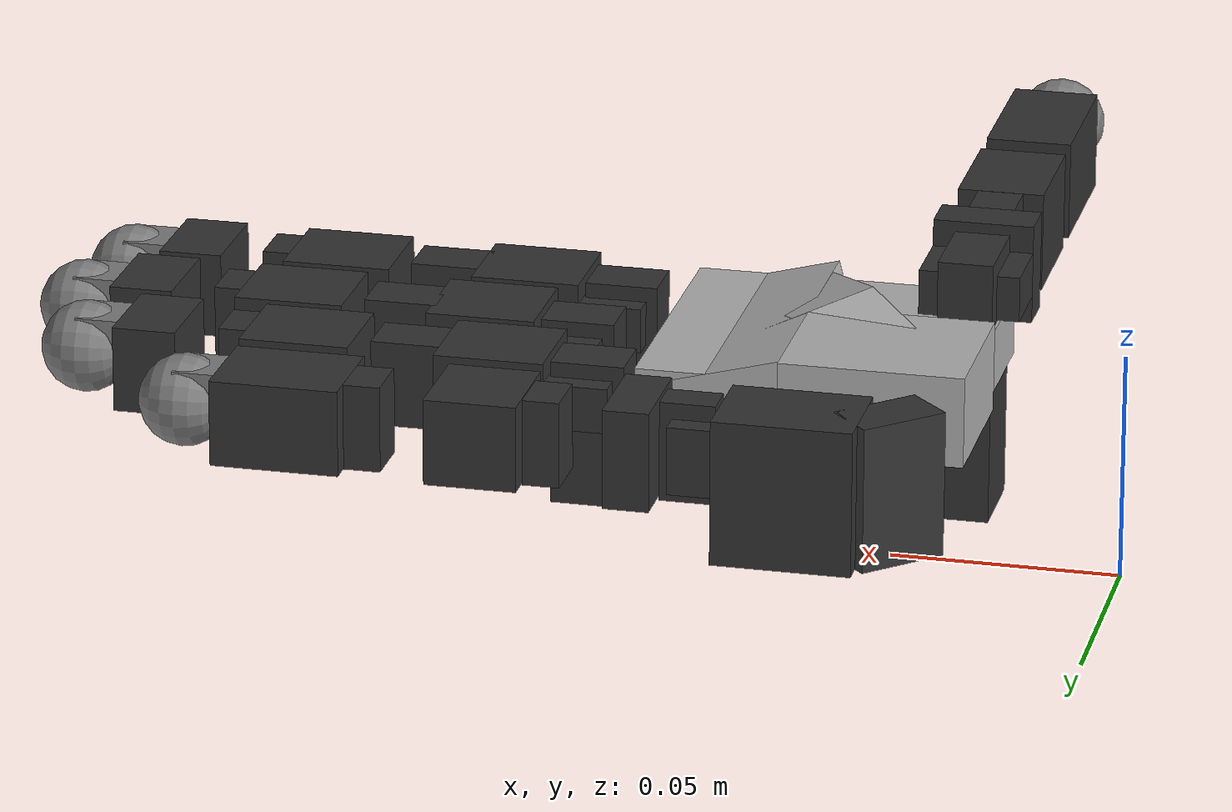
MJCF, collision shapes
<mujoco model="dg5f_right">
  <compiler angle="radian" meshdir="meshes/tesollo"/>

  <option timestep="0.01" integrator="Euler" iterations="5" ls_iterations="8">
    <flag eulerdamp="disable" multiccd="disable" nativeccd="disable"/>
  </option>

  <custom>
    <numeric data="200" name="max_contact_points"/>
    <numeric  data="128" name="contact_sensor_maxmatch"/>

  </custom>

  <default>
    <joint axis="0 1 0" damping="0.2" armature="0.00149376" actuatorfrcrange="-0.2196 0.2196" frictionloss="0.02"/>

    <default class="visual">
      <geom type="mesh" contype="0" conaffinity="0" group="2"/>
    </default>

    <default class="collision">
      <geom group="3" friction="0.2" solref="0.02 1.5" solimp="0.95 0.99 0.001" type="box" mass="0" material="black"/>
      <default class="palm">
        <geom condim="3" friction="2 0.5 0.001" rgba=".7 .7 .7 .3"/>
      </default>
      <default class="tip">
        <geom margin="0.001" condim="4" friction="1 0.1 0.0002" rgba=".5 .5 .5 .3" solimp="0.99 0.999 0.0001"/>
      </default>
    </default>
  </default>

  <asset>
    <material name="black" rgba="0.2 0.2 0.2 1"/>
    <material name="white" rgba="0.9 0.9 0.9 1"/>

    <texture type="skybox" builtin="gradient" rgb1="0.3 0.5 0.7" rgb2="0 0 0" width="512" height="3072"/>

    <mesh name="rl_dg_mount_c" content_type="model/stl" file="rl_dg_mount_c_simple.STL"/>
    <mesh name="rl_dg_base_c" content_type="model/stl" file="rl_dg_base_c_simple.STL"/>
    <mesh name="rl_dg_palm_c" content_type="model/stl" file="rl_dg_palm_c.STL"/>

    <mesh name="rl_dg_1_1_c" content_type="model/stl" file="rl_dg_1_1_c.STL"/>
    <mesh name="rl_dg_1_2_c" content_type="model/stl" file="rl_dg_1_2_c.STL"/>
    <mesh name="rl_dg_1_3_c" content_type="model/stl" file="rl_dg_1_3_c.STL"/>
    <mesh name="rl_dg_1_4_c" content_type="model/stl" file="rl_dg_1_4_c.STL"/>
    <mesh name="rl_dg_1_tip_c" content_type="model/stl" file="rl_dg_1_tip_c_simple.STL"/>

    <mesh name="rl_dg_2_1_c" content_type="model/stl" file="rl_dg_2_1_c.STL"/>
    <mesh name="rl_dg_2_2_c" content_type="model/stl" file="rl_dg_2_2_c.STL"/>
    <mesh name="rl_dg_2_3_c" content_type="model/stl" file="rl_dg_2_3_c.STL"/>
    <mesh name="rl_dg_2_4_c" content_type="model/stl" file="rl_dg_2_4_c.STL"/>
    <mesh name="rl_dg_2_tip_c" content_type="model/stl" file="rl_dg_2_tip_c_simple.STL"/>

    <mesh name="rl_dg_3_1_c" content_type="model/stl" file="rl_dg_3_1_c.STL"/>
    <mesh name="rl_dg_3_2_c" content_type="model/stl" file="rl_dg_3_2_c.STL"/>
    <mesh name="rl_dg_3_3_c" content_type="model/stl" file="rl_dg_3_3_c.STL"/>
    <mesh name="rl_dg_3_4_c" content_type="model/stl" file="rl_dg_3_4_c.STL"/>
    <mesh name="rl_dg_3_tip_c" content_type="model/stl" file="rl_dg_2_tip_c_simple.STL"/>

    <mesh name="rl_dg_4_1_c" content_type="model/stl" file="rl_dg_4_1_c.STL"/>
    <mesh name="rl_dg_4_2_c" content_type="model/stl" file="rl_dg_4_2_c.STL"/>
    <mesh name="rl_dg_4_3_c" content_type="model/stl" file="rl_dg_4_3_c.STL"/>
    <mesh name="rl_dg_4_4_c" content_type="model/stl" file="rl_dg_4_4_c.STL"/>
    <mesh name="rl_dg_4_tip_c" content_type="model/stl" file="rl_dg_2_tip_c_simple.STL"/>

    <mesh name="rl_dg_5_1_c" content_type="model/stl" file="rl_dg_5_1_c.STL"/>
    <mesh name="rl_dg_5_2_c" content_type="model/stl" file="rl_dg_5_2_c.STL"/>
    <mesh name="rl_dg_5_3_c" content_type="model/stl" file="rl_dg_5_3_c.STL"/>
    <mesh name="rl_dg_5_4_c" content_type="model/stl" file="rl_dg_5_4_c.STL"/>
    <mesh name="rl_dg_5_tip_c" content_type="model/stl" file="rl_dg_2_tip_c_simple.STL"/>
  </asset>

  <worldbody>
    <light name="spotlight" mode="targetbodycom" target="palm_lower" pos="3 0 4"/>

    <body name="rh" quat="0 1 0 1" pos="-0.05 0 0.03">
    <joint name="rj_wrist_1_1" pos="0 0 0" axis="1 0 0" range="-0.3 0.3" actuatorfrcrange="-10 10" damping="0.1" armature="0.149376" frictionloss="0.2"/>
    <joint name="rj_wrist_1_2" pos="0 0 0" axis="0 1 0" range="-0.3 0.3" actuatorfrcrange="-10 10" damping="0.1" armature="0.149376" frictionloss="0.2"/>
    <joint name="rj_wrist_1_3" pos="0 0 0" axis="0 0 1" range="-0.3 0.3" actuatorfrcrange="-10 10" damping="0.1" armature="0.149376" frictionloss="0.2"/>

    <body name="mount">
      <inertial pos="0 0 0" quat="0.414969 0.572521 0.572945 0.414433" mass="0.045" diaginertia="1.3718e-05 1.31155e-05 3.31624e-06"/>
      <site name="wrist_site" pos="0.0 0.0 0.0" group="4"/>

      <site name="grasp_site" pos="0.01 0.017 0.02" group="4"/>

      <geom class="visual" type="mesh" mesh="rl_dg_mount_c"/>
      <geom class="visual" pos="0 0 0.004" type="mesh" mesh="rl_dg_base_c"/>
      <geom class="visual" pos="0 0 0.0738" quat="1 0 0 0" type="mesh" mesh="rl_dg_palm_c"/>
      <geom class="palm" size="0.007 0.032 0.015" pos="0.013 0.0015 0.135"/>

      <geom class="palm" size="0.01 0.014 0.01" pos="0.0135 0.015 0.12" quat="1 0.34 -0.135 0.05"/>

      <geom class="palm" size="0.01 0.018 0.014" pos="0.01195 -0.00923 0.10547" quat="0.99349 0.35827 -0.07395 -0.12441"/>
      <geom class="palm" size="0.0097 0.032 0.014" pos="0.01125 0.0015 0.13" quat="1 0 -0.13 0"/>
      <geom class="palm" size="0.01 0.0175 0.02" pos="0.01425 -0.014 0.099" quat="1 0 0 0"/>

      <body name="palm_lower" pos="0.00 0 0">
        <geom class="palm" size="0.007 0.032 0.02" pos="0.013 0.0015 0.1"/>
      </body>
    </body>

    <!-- Thumb -->
    <body name="rl_dg_1_1" pos="-0.0162 0.019 0.0866">
      <inertial pos="0.021473 3.1163e-06 0.0028146" quat="0.414969 0.572521 0.572945 0.414433" mass="0.045" diaginertia="1.3718e-05 1.31155e-05 3.31624e-06"/>
      <joint name="rj_dg_1_1" pos="0 0 0" axis="1 0 0" range="-0.383972 0.890118"/>
      <geom type="mesh" class="visual" mesh="rl_dg_1_1_c"/>
      <geom class="collision" size="0.0295 0.01 0.006" pos="0.021473 3.1163e-06 -0.00"/>

      <body name="rl_dg_1_2" pos="0.04195 0 0">
        <inertial pos="0.00055633 0.0155 0.00055633" quat="0.379972 0.152995 -0.59634 0.690357" mass="0.025" diaginertia="2.07162e-06 1.99661e-06 1.37777e-06"/>
        <joint name="rj_dg_1_2" pos="0 0 0" axis="0 0 1" range="-3.14159 0" />
        <geom type="mesh" class="visual" mesh="rl_dg_1_2_c"/>
        <geom class="collision" size="0.005 0.01 0.011" pos="0.00 0.005 -0.00"/>
        <geom class="collision" size="0.011 0.005 0.011" pos="0.00 0.016 -0.00"/>
        <geom class="collision" size="0.011 0.01 0.005" pos="0.00 0.023 -0.00"/>

        <body name="rl_dg_1_3" pos="0 0.031 0">
          <inertial pos="2.3008e-05 0.014842 4.7446e-06" quat="0.523748 0.473568 -0.525398 0.474739" mass="0.045" diaginertia="6.4181e-06 6.01585e-06 2.42154e-06"/>
          <joint name="rj_dg_1_3" pos="0 0 0" axis="1 0 0" range="0 1.5708" />
          <geom type="mesh" class="visual" mesh="rl_dg_1_3_c"/>
          <geom class="collision" size="0.011 0.014 0.0095" pos="2.3008e-05 0.014842 4.7446e-06"/>

          <body name="rl_dg_1_4" pos="0 0.0388 0">
            <inertial pos="-0.000182282 0.0140657 0.000732812" quat="0.521074 0.440882 -0.475371 0.555092" mass="0.05" diaginertia="2.0651e-05 2.02971e-05 3.29812e-06"/>
            <joint name="rj_dg_1_4" pos="0 0 0" axis="1 0 0" range="0 1.5708" />
            <geom type="mesh" class="visual" mesh="rl_dg_1_4_c"/>
            <geom class="collision" size="0.011 0.018 0.0095" pos="2.3008e-05 0.014842 4.7446e-06"/>

            <geom class="visual" pos="0 0.0363 0" quat="1 0 0 0" type="mesh" mesh="rl_dg_1_tip_c" material="white"/>
            <site name="rl_dg_1_tip_c" pos="0 -0.0 0.0" group="4"/>

            <geom name="rl_dg_1_tip" class="tip" type="sphere" size="0.01" pos="0.00 0.044 0.0007"/>
            <geom name="rl_dg_1_tip_2" class="tip" size="0.006 0.009 0.004" pos="0.00 0.0363 0.005"/>

          </body>
        </body>
      </body>
    </body>

    <!-- Pointer -->
    <body name="rl_dg_2_1" pos="-0.0071 0.027 0.1399">
      <inertial pos="0.001061 0.00024417 0.023499" quat="0.632598 0.317074 0.297256 0.641032" mass="0.045" diaginertia="9.53287e-06 8.0012e-06 5.63792e-06"/>
      <joint name="rj_dg_2_1" pos="0 0 0" axis="1 0 0" range="-0.418879 0.610865" />
      <geom type="mesh" class="visual" mesh="rl_dg_2_1_c"/>
      <geom class="collision" size="0.016 0.006 0.008" pos="0.01 0.0 0.025"/>

      <body name="rl_dg_2_2" pos="0.01765 0 0.0265">
        <inertial pos="-4.7446e-06 2.3008e-05 0.023958" quat="0.998727 0.0504191 0.000239574 0.00141058" mass="0.045" diaginertia="6.4181e-06 6.01585e-06 2.42154e-06"/>
        <joint name="rj_dg_2_2" pos="0 0 0" axis="0 1 0" range="0 2.00713" />
        <geom type="mesh" class="visual" mesh="rl_dg_2_2_c"/>
        <geom class="collision" size="0.005 0.011 0.012" pos="2.3008e-05 0.0 0.005"/>
        <geom class="collision" size="0.0095 0.011 0.012" pos="2.3008e-05 0.0 0.019"/>
        <geom class="collision" size="0.0095 0.006 0.008" pos="2.3008e-05 0.0 0.038"/>

        <body name="rl_dg_2_3" pos="0 0 0.0388">
          <inertial pos="-4.7446e-06 2.3008e-05 0.023958" quat="0.998727 0.0504191 0.000239574 0.00141058" mass="0.045" diaginertia="6.4181e-06 6.01585e-06 2.42154e-06"/>
          <joint name="rj_dg_2_3" pos="0 0 0" axis="0 1 0" range="0 1.5708" />
          <geom type="mesh" class="visual" mesh="rl_dg_2_3_c"/>
          <geom class="collision" size="0.0095 0.011 0.012" pos="2.3008e-05 0.0 0.023"/>
          <geom class="collision" size="0.0095 0.006 0.003" pos="2.3008e-05 0.0 0.038"/>

          <body name="rl_dg_2_4" pos="0 0 0.0388">
            <inertial pos="4.4568e-05 -0.00389127 0.0160588" quat="0.526445 0.843914 -0.0138865 0.10233" mass="0.03" diaginertia="6.58495e-06 5.22897e-06 2.6024e-06"/>
            <joint name="rj_dg_2_4" pos="0 0 0" axis="0 1 0" range="0 1.5708" />
            <geom type="mesh" class="visual" mesh="rl_dg_2_4_c"/>
            <geom class="collision" size="0.0095 0.011 0.007" pos="2.3008e-05 0.0 0.0175"/>

            <geom class="visual" pos="0 0 0.0255" quat="1 0 0 0" type="mesh" mesh="rl_dg_2_tip_c" material="white"/>
            <site name="rl_dg_2_tip_c" pos="0 -0.0 0.0" group="4"/>

            <geom name="rl_dg_2_tip" class="tip" type="sphere" size="0.01" pos="0.0007 0.000 0.0335"/>
            <geom name="rl_dg_2_tip_2" class="tip" size="0.004 0.006 0.009" pos="0.005 0.00 0.0255"/>
          </body>
        </body>
      </body>
    </body>

    <!-- Middle finger -->
    <body name="rl_dg_3_1" pos="-0.0071 0.0025 0.1439">
      <inertial pos="0.0012558 -0.00017703 0.023374" quat="0.648691 0.313074 0.303523 0.623746" mass="0.045" diaginertia="9.33725e-06 7.69718e-06 5.31337e-06"/>
      <joint name="rj_dg_3_1" pos="0 0 0" axis="1 0 0" range="-0.610865 0.610865" />
      <geom type="mesh" class="visual" mesh="rl_dg_3_1_c"/>
      <geom class="collision" size="0.016 0.006 0.008" pos="0.01 0.0 0.025"/>

      <body name="rl_dg_3_2" pos="0.01765 0 0.0265">
        <inertial pos="-4.7446e-06 2.3008e-05 0.023958" quat="0.998727 0.0504191 0.000239574 0.00141058" mass="0.045" diaginertia="6.4181e-06 6.01585e-06 2.42154e-06"/>
        <joint name="rj_dg_3_2" pos="0 0 0" axis="0 1 0" range="0 1.95477" />
        <geom type="mesh" class="visual" mesh="rl_dg_3_2_c"/>
        <geom class="collision" size="0.005 0.011 0.012" pos="2.3008e-05 0.0 0.005"/>
        <geom class="collision" size="0.0095 0.011 0.012" pos="2.3008e-05 0.0 0.019"/>
        <geom class="collision" size="0.0095 0.006 0.008" pos="2.3008e-05 0.0 0.038"/>

        <body name="rl_dg_3_3" pos="0 0 0.0388">
          <inertial pos="-4.7446e-06 2.3008e-05 0.023958" quat="0.998727 0.0504191 0.000239574 0.00141058" mass="0.045" diaginertia="6.4181e-06 6.01585e-06 2.42154e-06"/>
          <joint name="rj_dg_3_3" pos="0 0 0" axis="0 1 0" range="0 1.5708" />
          <geom type="mesh" class="visual" mesh="rl_dg_3_3_c"/>
          <geom class="collision" size="0.0095 0.011 0.012" pos="2.3008e-05 0.0 0.023"/>
          <geom class="collision" size="0.0095 0.006 0.003" pos="2.3008e-05 0.0 0.038"/>

          <body name="rl_dg_3_4" pos="0 0 0.0388">
            <inertial pos="4.4568e-05 -0.00389127 0.0160588" quat="0.526445 0.843914 -0.0138865 0.10233" mass="0.03" diaginertia="6.58495e-06 5.22897e-06 2.6024e-06"/>
            <joint name="rj_dg_3_4" pos="0 0 0" axis="0 1 0" range="0 1.5708" />
            <geom type="mesh" class="visual" mesh="rl_dg_3_4_c"/>
            <geom class="collision" size="0.0095 0.011 0.007" pos="2.3008e-05 0.0 0.0175"/>

            <geom class="visual" pos="0 0 0.0255" quat="1 0 0 0" type="mesh" mesh="rl_dg_3_tip_c" material="white"/>
            <site name="rl_dg_3_tip_c" pos="0 -0.0 0.0" group="4"/>

            <geom name="rl_dg_3_tip" class="tip" type="sphere" size="0.01" pos="0.0007 0.000 0.0335"/>
            <geom name="rl_dg_3_tip_2" class="tip" size="0.004 0.006 0.009" pos="0.005 0.00 0.0255"/>
          </body>
        </body>
      </body>
    </body>

    <!-- Ring finger -->
    <body name="rl_dg_4_1" pos="-0.0071 -0.022 0.1359">
      <inertial pos="6.0566e-05 -0.00058566 0.023499" quat="0.666108 0.307837 0.308411 0.605327" mass="0.045" diaginertia="9.54523e-06 7.99297e-06 5.6344e-06"/>
      <joint name="rj_dg_4_1" pos="0 0 0" axis="1 0 0" range="-0.610865 0.418879" />
      <geom type="mesh" class="visual" mesh="rl_dg_4_1_c"/>
      <geom class="collision" size="0.016 0.006 0.008" pos="0.01 0.0 0.025"/>

      <body name="rl_dg_4_2" pos="0.01765 0 0.0265">
        <inertial pos="-4.7446e-06 2.3008e-05 0.023958" quat="0.998727 0.0504191 0.000239574 0.00141058" mass="0.045" diaginertia="6.4181e-06 6.01585e-06 2.42154e-06"/>
        <joint name="rj_dg_4_2" pos="0 0 0" axis="0 1 0" range="0 1.90241" />
        <geom type="mesh" class="visual" mesh="rl_dg_4_2_c"/>
        <geom class="collision" size="0.005 0.011 0.012" pos="2.3008e-05 0.0 0.005"/>
        <geom class="collision" size="0.0095 0.011 0.012" pos="2.3008e-05 0.0 0.019"/>
        <geom class="collision" size="0.0095 0.006 0.008" pos="2.3008e-05 0.0 0.038"/>

        <body name="rl_dg_4_3" pos="0 0 0.0388">
          <inertial pos="-4.7446e-06 2.3008e-05 0.023958" quat="0.998727 0.0504191 0.000239574 0.00141058" mass="0.045" diaginertia="6.4181e-06 6.01585e-06 2.42154e-06"/>
          <joint name="rj_dg_4_3" pos="0 0 0" axis="0 1 0" range="0 1.5708" />
          <geom type="mesh" class="visual" mesh="rl_dg_4_3_c"/>
          <geom class="collision" size="0.0095 0.011 0.012" pos="2.3008e-05 0.0 0.023"/>
          <geom class="collision" size="0.0095 0.006 0.003" pos="2.3008e-05 0.0 0.038"/>

          <body name="rl_dg_4_4" pos="0 0 0.0388">
            <inertial pos="4.4568e-05 -0.00389127 0.0160588" quat="0.526445 0.843914 -0.0138865 0.10233" mass="0.03" diaginertia="6.58495e-06 5.22897e-06 2.6024e-06"/>
            <joint name="rj_dg_4_4" pos="0 0 0" axis="0 1 0" range="0 1.5708" />
            <geom type="mesh" class="visual" mesh="rl_dg_4_4_c"/>
            <geom class="collision" size="0.0095 0.011 0.007" pos="2.3008e-05 0.0 0.0175"/>

            <geom class="visual" pos="0 0 0.0255" quat="1 0 0 0" type="mesh" mesh="rl_dg_4_tip_c" material="white"/>
            <site name="rl_dg_4_tip_c" pos="0 -0.0 0.0" group="4"/>

            <geom name="rl_dg_4_tip" class="tip" type="sphere" size="0.01" pos="0.0007 0.000 0.0335"/>
            <geom name="rl_dg_4_tip_2" class="tip" size="0.004 0.006 0.009" pos="0.005 0.00 0.0255"/>
          </body>
        </body>
      </body>
    </body>

    <!-- Little finger -->
    <body name="rl_dg_5_1" pos="0.0103 -0.0195 0.092">
      <inertial pos="-0.00433014 -0.0250157 0.0140244" quat="0.856441 0.0940801 -0.138609 0.488309" mass="0.055" diaginertia="2.56498e-05 2.33809e-05 9.54179e-06"/>
      <joint name="rj_dg_5_1" pos="0 0 0" axis="0 0 1" range="-0.0174533 1.0472" />
      <geom type="mesh" class="visual" mesh="rl_dg_5_1_c"/>
      <geom class="collision" size="0.016 0.006 0.01" pos="-0.005 -0.027 0.0" quat="1 0.4 0 0"/>
      <geom class="collision" size="0.016 0.011 0.015" pos="-0.005 -0.03 0.02"/>
      <geom class="collision" size="0.0075 0.0095 0.005" pos="-0.0 -0.028 0.04"/>

      <body name="rl_dg_5_2" pos="0 -0.028 0.0381">
        <inertial pos="-0.000537631 0.000537631 0.0155001" quat="0.909406 -0.067474 0.162898 0.376687" mass="0.025" diaginertia="2.06912e-06 2.00204e-06 1.37635e-06"/>
        <joint name="rj_dg_5_2" pos="0 0 0" axis="1 0 0" range="-0.418879 0.610865" />
        <geom type="mesh" class="visual" mesh="rl_dg_5_2_c"/>
        <geom class="collision" size="0.011 0.004 0.006" pos="5.2052e-05 -0.0005 0.0036116289"/>
        <geom class="collision" size="0.011 0.011 0.005" pos="-0.000537631 0.000537631 0.0155001"/>

        <body name="rl_dg_5_3" pos="0 0 0.031">
          <inertial pos="4.74465e-06 2.30084e-05 0.0148419" quat="0.998727 -0.05042 0.000239567 -0.00141066" mass="0.045" diaginertia="6.41806e-06 6.01584e-06 2.42155e-06"/>
          <joint name="rj_dg_5_3" pos="0 0 0" axis="0 1 0" range="0 1.5708" />
          <geom type="mesh" class="visual" mesh="rl_dg_5_3_c"/>
          <geom class="collision" size="0.0095 0.006 0.004" pos="5.2052e-05 -0.0005 0.0036116289"/>
          <geom class="collision" size="0.0095 0.011 0.010" pos="4.74465e-06 2.30084e-05 0.0178419"/>

          <body name="rl_dg_5_4" pos="0 0 0.0388">
            <inertial pos="5.2052e-05 -0.00381428 0.0176289" quat="0.94731 -0.315963 -0.040746 0.0333238" mass="0.05" diaginertia="1.67134e-05 1.18894e-05 7.53281e-06"/>
            <joint name="rj_dg_5_4" pos="0 0 0" axis="0 1 0" range="0 1.5708" />
            <geom type="mesh" class="visual" mesh="rl_dg_5_4_c"/>
            <geom class="collision" size="0.0095 0.006 0.004" pos="5.2052e-05 -0.0005 0.0036116289"/>
            <geom class="collision" size="0.0095 0.011 0.014" pos="5.2052e-05 0.0 0.0216289"/>

            <geom class="visual" pos="0 0 0.0363" quat="1 0 0 0" type="mesh" mesh="rl_dg_5_tip_c" material="white"/>
            <site name="rl_dg_5_tip_c" pos="0 -0.0 0.0" group="4"/>

            <geom name="rl_dg_5_tip" class="tip" type="sphere" size="0.01" pos="0.0007 0.000 0.044"/>
            <geom name="rl_dg_5_tip_2" class="tip" size="0.004 0.006 0.009" pos="0.005 0.00 0.0363"/>
          </body>
        </body>
      </body>
    </body>
    </body>

  </worldbody>

  <contact>
    <!-- collisions with mount -->
    <exclude body1="mount" body2="rl_dg_1_1"/>
    <exclude body1="mount" body2="rl_dg_2_1"/>
    <exclude body1="mount" body2="rl_dg_3_1"/>
    <exclude body1="mount" body2="rl_dg_4_1"/>
    <exclude body1="mount" body2="rl_dg_5_1"/>

    <exclude body1="mount" body2="rl_dg_1_2"/>
    <exclude body1="mount" body2="rl_dg_2_2"/>
    <exclude body1="mount" body2="rl_dg_3_2"/>
    <exclude body1="mount" body2="rl_dg_4_2"/>
    <exclude body1="mount" body2="rl_dg_5_2"/>

    <exclude body1="mount" body2="rl_dg_1_3"/>
    <exclude body1="mount" body2="rl_dg_2_3"/>
    <exclude body1="mount" body2="rl_dg_3_3"/>
    <exclude body1="mount" body2="rl_dg_4_3"/>
    <exclude body1="mount" body2="rl_dg_5_3"/>

    <exclude body1="palm_lower" body2="rl_dg_1_1"/>
    <exclude body1="palm_lower" body2="rl_dg_1_2"/>
    <exclude body1="palm_lower" body2="rl_dg_1_3"/>

    <!-- collisions with other fingers -->
    <exclude body1="rl_dg_1_1" body2="rl_dg_2_1"/>
    <exclude body1="rl_dg_1_1" body2="rl_dg_3_1"/>
    <exclude body1="rl_dg_1_1" body2="rl_dg_4_1"/>
    <exclude body1="rl_dg_1_1" body2="rl_dg_5_1"/>

    <exclude body1="rl_dg_1_2" body2="rl_dg_2_1"/>
    <exclude body1="rl_dg_1_2" body2="rl_dg_3_1"/>
    <exclude body1="rl_dg_1_2" body2="rl_dg_4_1"/>
    <exclude body1="rl_dg_1_2" body2="rl_dg_5_1"/>

    <exclude body1="rl_dg_5_1" body2="rl_dg_2_1"/>
    <exclude body1="rl_dg_5_1" body2="rl_dg_3_1"/>
    <exclude body1="rl_dg_5_1" body2="rl_dg_4_1"/>

    <exclude body1="rl_dg_5_2" body2="rl_dg_2_1"/>
    <exclude body1="rl_dg_5_2" body2="rl_dg_3_1"/>
    <exclude body1="rl_dg_5_2" body2="rl_dg_4_1"/>

    <exclude body1="rl_dg_3_1" body2="rl_dg_2_1"/>
    <exclude body1="rl_dg_3_1" body2="rl_dg_4_1"/>
    <exclude body1="rl_dg_4_1" body2="rl_dg_2_1"/>

    <exclude body1="rl_dg_1_1" body2="rl_dg_1_3"/>
    <exclude body1="rl_dg_1_1" body2="rl_dg_1_4"/>
    <exclude body1="rl_dg_1_2" body2="rl_dg_1_4"/>

    <exclude body1="rl_dg_2_1" body2="rl_dg_2_3"/>
    <exclude body1="rl_dg_2_1" body2="rl_dg_2_4"/>
    <exclude body1="rl_dg_2_2" body2="rl_dg_2_4"/>

    <exclude body1="rl_dg_3_1" body2="rl_dg_3_3"/>
    <exclude body1="rl_dg_3_1" body2="rl_dg_3_4"/>
    <exclude body1="rl_dg_3_2" body2="rl_dg_3_4"/>

    <exclude body1="rl_dg_4_1" body2="rl_dg_4_3"/>
    <exclude body1="rl_dg_4_1" body2="rl_dg_4_4"/>
    <exclude body1="rl_dg_4_2" body2="rl_dg_4_4"/>

    <exclude body1="rl_dg_5_1" body2="rl_dg_5_3"/>
    <exclude body1="rl_dg_5_1" body2="rl_dg_5_4"/>
    <exclude body1="rl_dg_5_2" body2="rl_dg_5_4"/>

  </contact>

  <actuator>
    <position kp="10" kv="2" name="rj_wrist_1_1_a" joint="rj_wrist_1_1" ctrlrange="-0.3 0.3"/>
    <position kp="75" kv="10" name="rj_wrist_1_2_a" joint="rj_wrist_1_2" ctrlrange="-0.3 0.3"/>
    <position kp="10" kv="2" name="rj_wrist_1_3_a" joint="rj_wrist_1_3" ctrlrange="-0.3 0.3"/>

    <position kp="3" name="rj_dg_1_1_a" joint="rj_dg_1_1" ctrlrange="-0.383972 0.890118"/>
    <position kp="3" name="rj_dg_1_2_a" joint="rj_dg_1_2" ctrlrange="-3.14159 0"/>
    <position kp="3" name="rj_dg_1_3_a" joint="rj_dg_1_3" ctrlrange="0 1.5708"/>
    <position kp="3" name="rj_dg_1_4_a" joint="rj_dg_1_4" ctrlrange="0 1.5708"/>

    <position kp="3" name="rj_dg_2_1_a" joint="rj_dg_2_1" ctrlrange="-0.418879 0.610865"/>
    <position kp="3" name="rj_dg_2_2_a" joint="rj_dg_2_2" ctrlrange="0 2.00713"/>
    <position kp="3" name="rj_dg_2_3_a" joint="rj_dg_2_3" ctrlrange="0 1.5708"/>
    <position kp="3" name="rj_dg_2_4_a" joint="rj_dg_2_4" ctrlrange="0 1.5708"/>

    <position kp="3" name="rj_dg_3_1_a" joint="rj_dg_3_1" ctrlrange="-0.610865 0.610865"/>
    <position kp="3" name="rj_dg_3_2_a" joint="rj_dg_3_2" ctrlrange="0 1.95477"/>
    <position kp="3" name="rj_dg_3_3_a" joint="rj_dg_3_3" ctrlrange="0 1.5708"/>
    <position kp="3" name="rj_dg_3_4_a" joint="rj_dg_3_4" ctrlrange="0 1.5708"/>

    <position kp="3" name="rj_dg_4_1_a" joint="rj_dg_4_1" ctrlrange="-0.610865 0.418879"/>
    <position kp="3" name="rj_dg_4_2_a" joint="rj_dg_4_2" ctrlrange="0 1.90241"/>
    <position kp="3" name="rj_dg_4_3_a" joint="rj_dg_4_3" ctrlrange="0 1.5708"/>
    <position kp="3" name="rj_dg_4_4_a" joint="rj_dg_4_4" ctrlrange="0 1.5708"/>

    <position kp="3" name="rj_dg_5_1_a" joint="rj_dg_5_1" ctrlrange="-0.0174533 1.0472"/>
    <position kp="3" name="rj_dg_5_2_a" joint="rj_dg_5_2" ctrlrange="-0.418879 0.610865"/>
    <position kp="3" name="rj_dg_5_3_a" joint="rj_dg_5_3" ctrlrange="0 1.5708"/>
    <position kp="3" name="rj_dg_5_4_a" joint="rj_dg_5_4" ctrlrange="0 1.5708"/>
  </actuator>

</mujoco>
